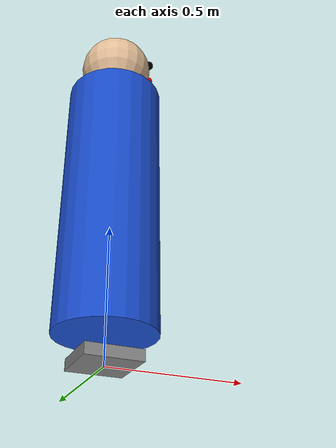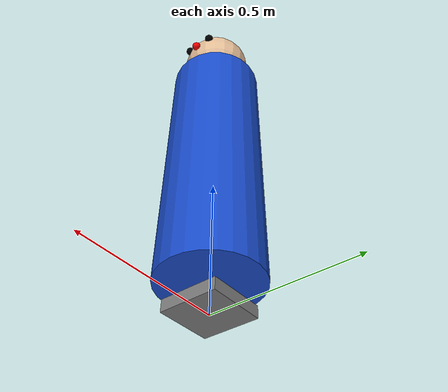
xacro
<?xml version="1.0"?>
<robot name="human_view_model" xmlns:xacro="http://ros.org/wiki/xacro">

  <!-- Base link -->
  <link name="human_base_link">
    <inertial>
      <origin xyz="0 0 0" rpy="0 0 0"/>
      <mass value="1.0"/>
      <inertia ixx="1e-2" ixy="0" ixz="0" iyy="1e-2" iyz="0" izz="1e-2"/>
    </inertial>
    <visual>
      <origin xyz="0 0 0.02" rpy="0 0 0"/>
      <geometry>
        <box size="0.2 0.2 0.04"/>
      </geometry>
      <material name="gray">
        <color rgba="0.5 0.5 0.5 1.0"/>
      </material>
    </visual>
  </link>

  <!-- Body -->
  <link name="body_link">
    <inertial>
      <origin xyz="0 0 0" rpy="0 0 0"/>
      <mass value="5.0"/>
      <inertia ixx="1e-1" ixy="0" ixz="0" iyy="1e-1" iyz="0" izz="1e-1"/>
    </inertial>
    <visual>
      <origin xyz="0 0 0" rpy="0 0 0"/>
      <geometry>
        <cylinder radius="0.18" length="1.0"/>
      </geometry>
      <material name="body_blue">
        <color rgba="0.1 0.3 0.8 1.0"/>
      </material>
    </visual>
  </link>

  <joint name="body_joint" type="fixed">
    <parent link="human_base_link"/>
    <child link="body_link"/>
    <origin xyz="0 0 0.6" rpy="0 0 0"/>
  </joint>

  <!-- Head -->
  <link name="head_link">
    <inertial>
      <origin xyz="0 0 0" rpy="0 0 0"/>
      <mass value="1.0"/>
      <inertia ixx="1e-2" ixy="0" ixz="0" iyy="1e-2" iyz="0" izz="1e-2"/>
    </inertial>
    <visual>
      <origin xyz="0 0 0" rpy="0 0 0"/>
      <geometry>
        <sphere radius="0.14"/>
      </geometry>
      <material name="head_skin">
        <color rgba="0.9 0.75 0.6 1.0"/>
      </material>
    </visual>
  </link>

  <joint name="head_joint" type="fixed">
    <parent link="human_base_link"/>
    <child link="head_link"/>
    <origin xyz="0 0 1.25" rpy="0 0 0"/>
  </joint>

  <!-- Face direction marker: protrudes in +X direction -->
  <link name="face_direction_marker_link">
    <visual>
      <!-- Small spherical nose marker on the front surface of the head -->
      <origin xyz="0.145 0 0" rpy="0 0 0"/>
      <geometry>
        <sphere radius="0.018"/>
      </geometry>
      <material name="face_red">
        <color rgba="1.0 0.0 0.0 1.0"/>
      </material>
    </visual>
  </link>

  <joint name="face_direction_marker_joint" type="fixed">
    <parent link="head_link"/>
    <child link="face_direction_marker_link"/>
    <origin xyz="0 0 0" rpy="0 0 0"/>
  </joint>

  <!-- Visual-only eyes: no camera function -->
  <link name="left_eye_visual_link">
    <inertial>
      <origin xyz="0 0 0" rpy="0 0 0"/>
      <mass value="0.01"/>
      <inertia ixx="1e-5" ixy="0" ixz="0" iyy="1e-5" iyz="0" izz="1e-5"/>
    </inertial>
    <visual>
      <origin xyz="0 0 0" rpy="0 0 0"/>
      <geometry>
        <sphere radius="0.018"/>
      </geometry>
      <material name="eye_black">
        <color rgba="0.0 0.0 0.0 1.0"/>
      </material>
    </visual>
  </link>

  <joint name="left_eye_visual_joint" type="fixed">
    <parent link="head_link"/>
    <child link="left_eye_visual_link"/>
    <origin xyz="0.125 0.055 0.035" rpy="0 0 0"/>
  </joint>

  <link name="right_eye_visual_link">
    <inertial>
      <origin xyz="0 0 0" rpy="0 0 0"/>
      <mass value="0.01"/>
      <inertia ixx="1e-5" ixy="0" ixz="0" iyy="1e-5" iyz="0" izz="1e-5"/>
    </inertial>
    <visual>
      <origin xyz="0 0 0" rpy="0 0 0"/>
      <geometry>
        <sphere radius="0.018"/>
      </geometry>
      <material name="eye_black">
        <color rgba="0.0 0.0 0.0 1.0"/>
      </material>
    </visual>
  </link>

  <joint name="right_eye_visual_joint" type="fixed">
    <parent link="head_link"/>
    <child link="right_eye_visual_link"/>
    <origin xyz="0.125 -0.055 0.035" rpy="0 0 0"/>
  </joint>

  <!-- Eye camera link -->
  <link name="eye_camera_link">
    <inertial>
      <origin xyz="0 0 0" rpy="0 0 0"/>
      <mass value="0.1"/>
      <inertia ixx="1e-3" ixy="0" ixz="0" iyy="1e-3" iyz="0" izz="1e-3"/>
    </inertial>
  </link>

  <joint name="eye_camera_joint" type="fixed">
    <parent link="head_link"/>
    <child link="eye_camera_link"/>
    <origin xyz="0.20 0 0.035" rpy="0 0 0"/>
  </joint>

  <gazebo reference="left_eye_visual_link">
    <gravity>false</gravity>
    <material>Gazebo/Black</material>
  </gazebo>
  <gazebo reference="right_eye_visual_link">
    <gravity>false</gravity>
    <material>Gazebo/Black</material>
  </gazebo>

  <!-- Gazebo camera sensor -->
  <gazebo reference="eye_camera_link">

    <gravity>false</gravity>

    <sensor type="camera" name="head_camera">
      <update_rate>30</update_rate>

      <camera>
        <horizontal_fov>1.3962634</horizontal_fov>
        <image>
          <width>1280</width>
          <height>720</height>
          <format>R8G8B8</format>
        </image>
        <clip>
          <near>0.02</near>
          <far>50</far>
        </clip>
      </camera>

      <always_on>true</always_on>
      <visualize>false</visualize>

      <plugin name="gazebo_ros_camera" filename="libgazebo_ros_camera.so">
        <robotNamespace>/</robotNamespace>
        <frameName>eye_camera_link</frameName>
        <cameraName>/eye</cameraName>
        <imageTopicName>image_raw</imageTopicName>
        <cameraInfoTopicName>camera_info</cameraInfoTopicName>
        <updateRate>30.0</updateRate>
      </plugin>
    </sensor>
  </gazebo>

  <!-- Keep the model from falling under gravity -->
  <gazebo reference="human_base_link">
    <gravity>false</gravity>
  </gazebo>
  <gazebo reference="body_link">
    <gravity>false</gravity>
    <material>Gazebo/Blue</material>
  </gazebo>
  <gazebo reference="head_link">
    <gravity>false</gravity>
    <material>Gazebo/Skin</material>
  </gazebo>
  <gazebo reference="face_direction_marker_link">
    <gravity>false</gravity>
    <material>Gazebo/Red</material>
  </gazebo>

</robot>
